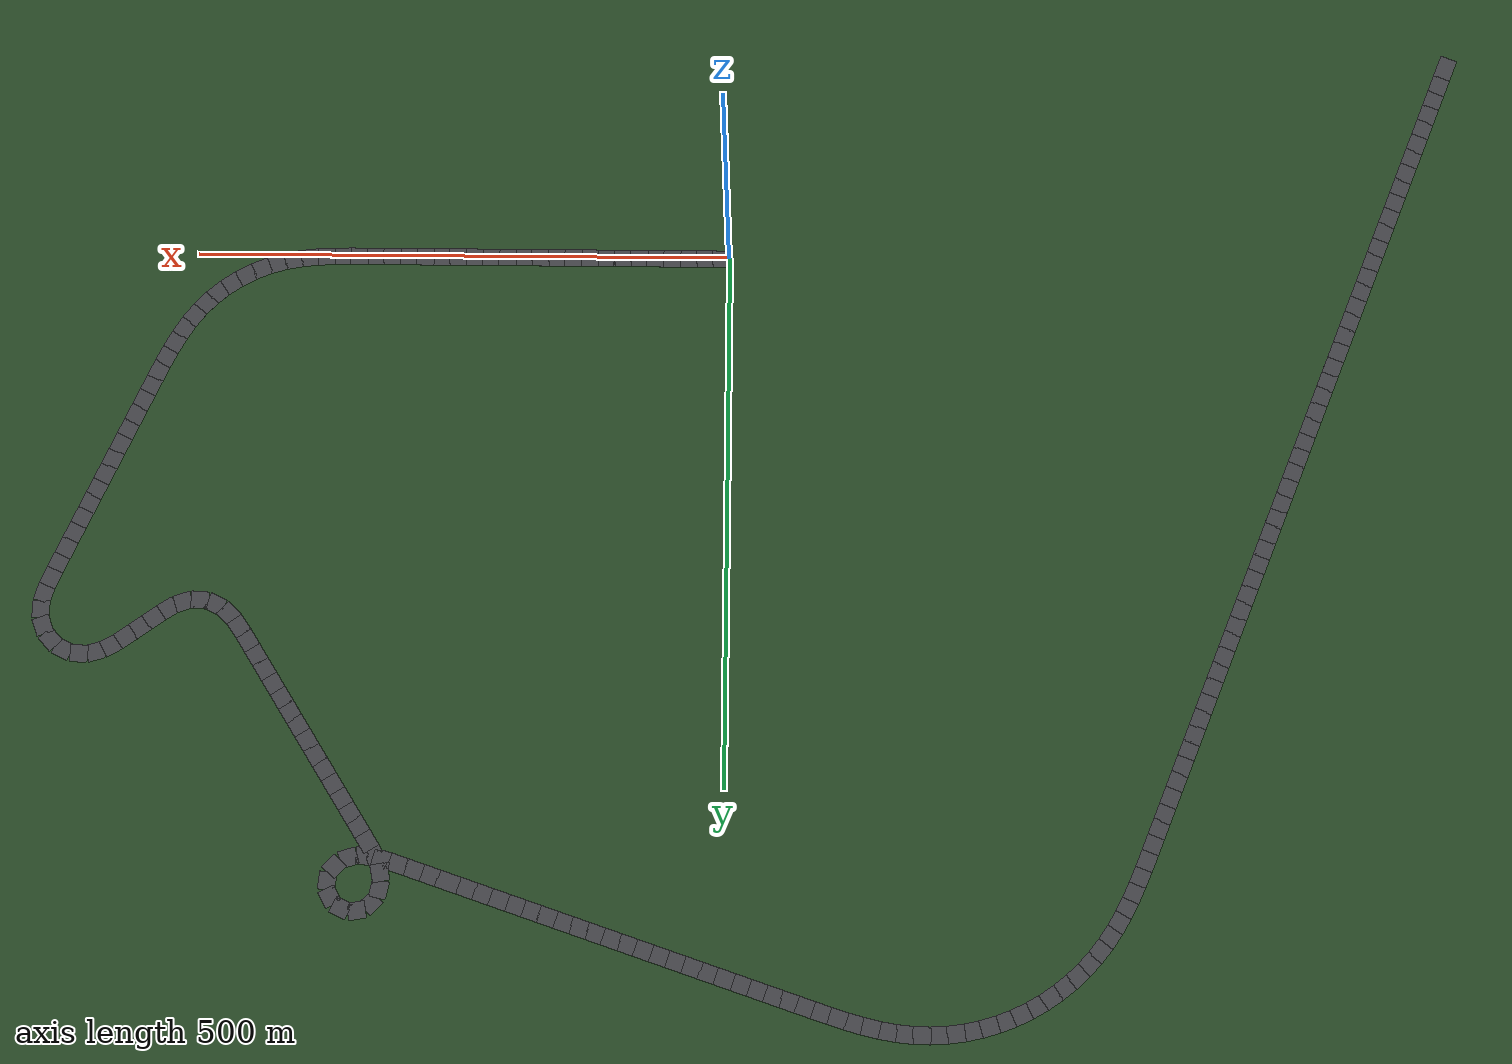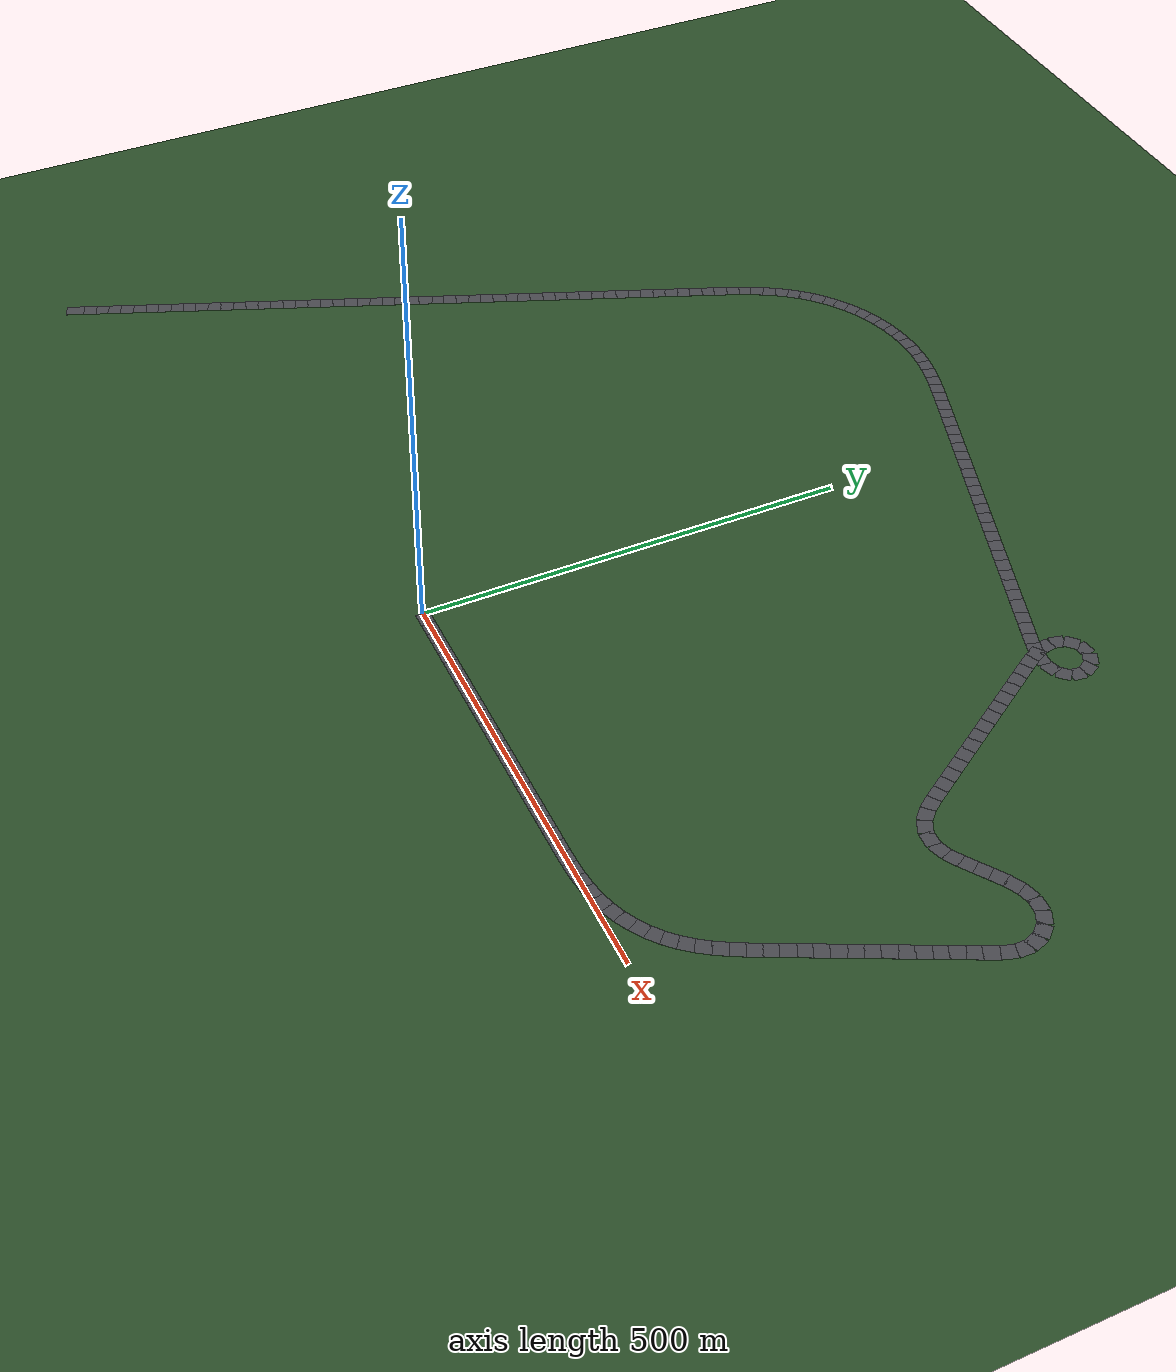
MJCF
<mujoco model="f1_lap">
  <option gravity="0 0 -9.81" timestep="0.005"/>
  <visual>
    <headlight diffuse=".9 .9 .9" ambient=".25 .25 .25" specular="0 0 0"/>
    <rgba haze="0.30 0.36 0.45 1"/>
    <global offwidth="1280" offheight="720"/>
  </visual>
  <asset>
    <texture type="skybox" builtin="gradient" rgb1="0.55 0.7 0.92" rgb2="0.15 0.20 0.35"
             width="800" height="800"/>
    <texture name="grass_tex" type="2d" builtin="checker"
             rgb1="0.20 0.35 0.18" rgb2="0.13 0.25 0.13"
             width="200" height="200"/>
    <material name="grass" texture="grass_tex" texrepeat="60 60"
              reflectance="0.0" specular="0.05"/>
    <material name="asphalt" rgba="0.28 0.28 0.30 1" specular="0.20" shininess="0.20"/>
    <material name="chassis" rgba="0.85 0.10 0.10 1" specular="0.7" shininess="0.7"/>
    <material name="halo"    rgba="0.05 0.05 0.05 1" specular="0.4" shininess="0.5"/>
    <material name="tyre"    rgba="0.05 0.05 0.05 1" specular="0.2" shininess="0.2"/>
    <material name="wing"    rgba="0.10 0.10 0.12 1" specular="0.4" shininess="0.5"/>
    <material name="line"    rgba="0.85 0.85 0.85 1"/>
  </asset>
  <worldbody>
    <light name="sun" diffuse="1.0 0.95 0.85" pos="500 -500 600" dir="-0.6 0.6 -0.8"
           castshadow="true"/>
    <light name="fill" diffuse="0.30 0.35 0.50" pos="-300 300 400" dir="0.5 -0.5 -0.6"
           castshadow="false"/>
    <!-- Big ground plane (grass) -->
    <geom name="ground" type="plane" pos="-25.0 259.3 0"
          size="991 991 1" material="grass"/>
    <!-- Centerline strip (asphalt road) -->
    <geom type="box" pos="7.76 0.00 0.02" size="8.26 8.0 0.02" quat="1.0000 0 0 0.0000" material="asphalt" contype="0" conaffinity="0"/>
      <geom type="box" pos="23.29 0.00 0.02" size="8.26 8.0 0.02" quat="1.0000 0 0 0.0000" material="asphalt" contype="0" conaffinity="0"/>
      <geom type="box" pos="38.81 0.00 0.02" size="8.26 8.0 0.02" quat="1.0000 0 0 0.0000" material="asphalt" contype="0" conaffinity="0"/>
      <geom type="box" pos="54.34 0.00 0.02" size="8.26 8.0 0.02" quat="1.0000 0 0 0.0000" material="asphalt" contype="0" conaffinity="0"/>
      <geom type="box" pos="69.87 0.00 0.02" size="8.26 8.0 0.02" quat="1.0000 0 0 0.0000" material="asphalt" contype="0" conaffinity="0"/>
      <geom type="box" pos="85.39 0.00 0.02" size="8.26 8.0 0.02" quat="1.0000 0 0 0.0000" material="asphalt" contype="0" conaffinity="0"/>
      <geom type="box" pos="100.92 0.00 0.02" size="8.26 8.0 0.02" quat="1.0000 0 0 0.0000" material="asphalt" contype="0" conaffinity="0"/>
      <geom type="box" pos="116.44 0.00 0.02" size="8.26 8.0 0.02" quat="1.0000 0 0 0.0000" material="asphalt" contype="0" conaffinity="0"/>
      <geom type="box" pos="131.97 0.00 0.02" size="8.26 8.0 0.02" quat="1.0000 0 0 0.0000" material="asphalt" contype="0" conaffinity="0"/>
      <geom type="box" pos="147.50 0.00 0.02" size="8.26 8.0 0.02" quat="1.0000 0 0 0.0000" material="asphalt" contype="0" conaffinity="0"/>
      <geom type="box" pos="163.02 0.00 0.02" size="8.26 8.0 0.02" quat="1.0000 0 0 0.0000" material="asphalt" contype="0" conaffinity="0"/>
      <geom type="box" pos="178.55 0.00 0.02" size="8.26 8.0 0.02" quat="1.0000 0 0 0.0000" material="asphalt" contype="0" conaffinity="0"/>
      <geom type="box" pos="194.07 0.00 0.02" size="8.26 8.0 0.02" quat="1.0000 0 0 0.0000" material="asphalt" contype="0" conaffinity="0"/>
      <geom type="box" pos="209.60 0.00 0.02" size="8.26 8.0 0.02" quat="1.0000 0 0 0.0000" material="asphalt" contype="0" conaffinity="0"/>
      <geom type="box" pos="225.13 0.00 0.02" size="8.26 8.0 0.02" quat="1.0000 0 0 0.0000" material="asphalt" contype="0" conaffinity="0"/>
      <geom type="box" pos="240.65 0.00 0.02" size="8.26 8.0 0.02" quat="1.0000 0 0 0.0000" material="asphalt" contype="0" conaffinity="0"/>
      <geom type="box" pos="256.18 0.00 0.02" size="8.26 8.0 0.02" quat="1.0000 0 0 0.0000" material="asphalt" contype="0" conaffinity="0"/>
      <geom type="box" pos="271.70 0.00 0.02" size="8.26 8.0 0.02" quat="1.0000 0 0 0.0000" material="asphalt" contype="0" conaffinity="0"/>
      <geom type="box" pos="287.23 0.00 0.02" size="8.26 8.0 0.02" quat="1.0000 0 0 0.0000" material="asphalt" contype="0" conaffinity="0"/>
      <geom type="box" pos="302.75 0.00 0.02" size="8.26 8.0 0.02" quat="1.0000 0 0 0.0000" material="asphalt" contype="0" conaffinity="0"/>
      <geom type="box" pos="318.28 0.00 0.02" size="8.26 8.0 0.02" quat="1.0000 0 0 0.0000" material="asphalt" contype="0" conaffinity="0"/>
      <geom type="box" pos="333.81 0.00 0.02" size="8.26 8.0 0.02" quat="1.0000 0 0 0.0000" material="asphalt" contype="0" conaffinity="0"/>
      <geom type="box" pos="349.33 0.01 0.02" size="8.26 8.0 0.02" quat="1.0000 0 0 0.0008" material="asphalt" contype="0" conaffinity="0"/>
      <geom type="box" pos="364.86 0.16 0.02" size="8.26 8.0 0.02" quat="1.0000 0 0 0.0087" material="asphalt" contype="0" conaffinity="0"/>
      <geom type="box" pos="380.37 0.71 0.02" size="8.26 8.0 0.02" quat="0.9996 0 0 0.0267" material="asphalt" contype="0" conaffinity="0"/>
      <geom type="box" pos="395.84 1.97 0.02" size="8.26 8.0 0.02" quat="0.9985 0 0 0.0547" material="asphalt" contype="0" conaffinity="0"/>
      <geom type="box" pos="411.18 4.25 0.02" size="8.26 8.0 0.02" quat="0.9957 0 0 0.0927" material="asphalt" contype="0" conaffinity="0"/>
      <geom type="box" pos="426.26 7.84 0.02" size="8.26 8.0 0.02" quat="0.9901 0 0 0.1401" material="asphalt" contype="0" conaffinity="0"/>
      <geom type="box" pos="440.91 12.90 0.02" size="8.26 8.0 0.02" quat="0.9816 0 0 0.1911" material="asphalt" contype="0" conaffinity="0"/>
      <geom type="box" pos="454.96 19.45 0.02" size="8.26 8.0 0.02" quat="0.9704 0 0 0.2416" material="asphalt" contype="0" conaffinity="0"/>
      <geom type="box" pos="468.25 27.42 0.02" size="8.26 8.0 0.02" quat="0.9566 0 0 0.2915" material="asphalt" contype="0" conaffinity="0"/>
      <geom type="box" pos="480.65 36.72 0.02" size="8.26 8.0 0.02" quat="0.9402 0 0 0.3406" material="asphalt" contype="0" conaffinity="0"/>
      <geom type="box" pos="492.03 47.25 0.02" size="8.26 8.0 0.02" quat="0.9213 0 0 0.3888" material="asphalt" contype="0" conaffinity="0"/>
      <geom type="box" pos="502.26 58.88 0.02" size="8.26 8.0 0.02" quat="0.9004 0 0 0.4351" material="asphalt" contype="0" conaffinity="0"/>
      <geom type="box" pos="511.36 71.44 0.02" size="8.26 8.0 0.02" quat="0.8807 0 0 0.4736" material="asphalt" contype="0" conaffinity="0"/>
      <geom type="box" pos="519.48 84.66 0.02" size="8.26 8.0 0.02" quat="0.8645 0 0 0.5027" material="asphalt" contype="0" conaffinity="0"/>
      <geom type="box" pos="526.84 98.32 0.02" size="8.26 8.0 0.02" quat="0.8526 0 0 0.5226" material="asphalt" contype="0" conaffinity="0"/>
      <geom type="box" pos="533.71 112.25 0.02" size="8.26 8.0 0.02" quat="0.8456 0 0 0.5338" material="asphalt" contype="0" conaffinity="0"/>
      <geom type="box" pos="540.33 126.29 0.02" size="8.26 8.0 0.02" quat="0.8437 0 0 0.5368" material="asphalt" contype="0" conaffinity="0"/>
      <geom type="box" pos="546.91 140.35 0.02" size="8.26 8.0 0.02" quat="0.8437 0 0 0.5368" material="asphalt" contype="0" conaffinity="0"/>
      <geom type="box" pos="553.49 154.42 0.02" size="8.26 8.0 0.02" quat="0.8437 0 0 0.5368" material="asphalt" contype="0" conaffinity="0"/>
      <geom type="box" pos="560.07 168.48 0.02" size="8.26 8.0 0.02" quat="0.8437 0 0 0.5368" material="asphalt" contype="0" conaffinity="0"/>
      <geom type="box" pos="566.65 182.54 0.02" size="8.26 8.0 0.02" quat="0.8437 0 0 0.5368" material="asphalt" contype="0" conaffinity="0"/>
      <geom type="box" pos="573.22 196.61 0.02" size="8.26 8.0 0.02" quat="0.8437 0 0 0.5368" material="asphalt" contype="0" conaffinity="0"/>
      <geom type="box" pos="579.80 210.67 0.02" size="8.26 8.0 0.02" quat="0.8437 0 0 0.5368" material="asphalt" contype="0" conaffinity="0"/>
      <geom type="box" pos="586.38 224.73 0.02" size="8.26 8.0 0.02" quat="0.8437 0 0 0.5368" material="asphalt" contype="0" conaffinity="0"/>
      <geom type="box" pos="592.96 238.80 0.02" size="8.26 8.0 0.02" quat="0.8437 0 0 0.5368" material="asphalt" contype="0" conaffinity="0"/>
      <geom type="box" pos="599.54 252.86 0.02" size="8.26 8.0 0.02" quat="0.8437 0 0 0.5368" material="asphalt" contype="0" conaffinity="0"/>
      <geom type="box" pos="606.11 266.92 0.02" size="8.26 8.0 0.02" quat="0.8437 0 0 0.5368" material="asphalt" contype="0" conaffinity="0"/>
      <geom type="box" pos="612.69 280.99 0.02" size="8.26 8.0 0.02" quat="0.8437 0 0 0.5368" material="asphalt" contype="0" conaffinity="0"/>
      <geom type="box" pos="619.27 295.05 0.02" size="8.26 8.0 0.02" quat="0.8437 0 0 0.5368" material="asphalt" contype="0" conaffinity="0"/>
      <geom type="box" pos="625.76 309.15 0.02" size="8.26 8.0 0.02" quat="0.8403 0 0 0.5421" material="asphalt" contype="0" conaffinity="0"/>
      <geom type="box" pos="631.27 323.62 0.02" size="8.25 8.0 0.02" quat="0.8058 0 0 0.5921" material="asphalt" contype="0" conaffinity="0"/>
      <geom type="box" pos="633.83 338.75 0.02" size="8.23 8.0 0.02" quat="0.7181 0 0 0.6960" material="asphalt" contype="0" conaffinity="0"/>
      <geom type="box" pos="631.45 353.73 0.02" size="8.22 8.0 0.02" quat="0.5748 0 0 0.8183" material="asphalt" contype="0" conaffinity="0"/>
      <geom type="box" pos="623.66 366.72 0.02" size="8.22 8.0 0.02" quat="0.4062 0 0 0.9138" material="asphalt" contype="0" conaffinity="0"/>
      <geom type="box" pos="611.53 375.80 0.02" size="8.22 8.0 0.02" quat="0.2223 0 0 0.9750" material="asphalt" contype="0" conaffinity="0"/>
      <geom type="box" pos="596.87 379.62 0.02" size="8.22 8.0 0.02" quat="0.0303 0 0 0.9995" material="asphalt" contype="0" conaffinity="0"/>
      <geom type="box" pos="581.73 377.95 0.02" size="8.24 8.0 0.02" quat="0.1392 0 0 -0.9903" material="asphalt" contype="0" conaffinity="0"/>
      <geom type="box" pos="567.49 372.08 0.02" size="8.26 8.0 0.02" quat="0.2488 0 0 -0.9685" material="asphalt" contype="0" conaffinity="0"/>
      <geom type="box" pos="554.32 363.92 0.02" size="8.26 8.0 0.02" quat="0.2984 0 0 -0.9544" material="asphalt" contype="0" conaffinity="0"/>
      <geom type="box" pos="541.61 355.00 0.02" size="8.26 8.0 0.02" quat="0.3041 0 0 -0.9526" material="asphalt" contype="0" conaffinity="0"/>
      <geom type="box" pos="528.95 346.00 0.02" size="8.26 8.0 0.02" quat="0.3041 0 0 -0.9526" material="asphalt" contype="0" conaffinity="0"/>
      <geom type="box" pos="516.05 337.39 0.02" size="8.26 8.0 0.02" quat="0.2762 0 0 -0.9611" material="asphalt" contype="0" conaffinity="0"/>
      <geom type="box" pos="502.14 330.86 0.02" size="8.23 8.0 0.02" quat="0.1574 0 0 -0.9875" material="asphalt" contype="0" conaffinity="0"/>
      <geom type="box" pos="487.08 328.93 0.02" size="8.22 8.0 0.02" quat="0.0305 0 0 0.9995" material="asphalt" contype="0" conaffinity="0"/>
      <geom type="box" pos="472.42 332.75 0.02" size="8.22 8.0 0.02" quat="0.2226 0 0 0.9749" material="asphalt" contype="0" conaffinity="0"/>
      <geom type="box" pos="459.96 341.55 0.02" size="8.24 8.0 0.02" quat="0.3799 0 0 0.9250" material="asphalt" contype="0" conaffinity="0"/>
      <geom type="box" pos="450.03 353.37 0.02" size="8.26 8.0 0.02" quat="0.4637 0 0 0.8860" material="asphalt" contype="0" conaffinity="0"/>
      <geom type="box" pos="441.48 366.31 0.02" size="8.26 8.0 0.02" quat="0.4836 0 0 0.8753" material="asphalt" contype="0" conaffinity="0"/>
      <geom type="box" pos="433.21 379.46 0.02" size="8.26 8.0 0.02" quat="0.4836 0 0 0.8753" material="asphalt" contype="0" conaffinity="0"/>
      <geom type="box" pos="424.95 392.60 0.02" size="8.26 8.0 0.02" quat="0.4836 0 0 0.8753" material="asphalt" contype="0" conaffinity="0"/>
      <geom type="box" pos="416.68 405.74 0.02" size="8.26 8.0 0.02" quat="0.4836 0 0 0.8753" material="asphalt" contype="0" conaffinity="0"/>
      <geom type="box" pos="408.42 418.89 0.02" size="8.26 8.0 0.02" quat="0.4836 0 0 0.8753" material="asphalt" contype="0" conaffinity="0"/>
      <geom type="box" pos="400.16 432.03 0.02" size="8.26 8.0 0.02" quat="0.4836 0 0 0.8753" material="asphalt" contype="0" conaffinity="0"/>
      <geom type="box" pos="391.89 445.18 0.02" size="8.26 8.0 0.02" quat="0.4836 0 0 0.8753" material="asphalt" contype="0" conaffinity="0"/>
      <geom type="box" pos="383.63 458.32 0.02" size="8.26 8.0 0.02" quat="0.4836 0 0 0.8753" material="asphalt" contype="0" conaffinity="0"/>
      <geom type="box" pos="375.36 471.46 0.02" size="8.26 8.0 0.02" quat="0.4836 0 0 0.8753" material="asphalt" contype="0" conaffinity="0"/>
      <geom type="box" pos="367.10 484.61 0.02" size="8.26 8.0 0.02" quat="0.4836 0 0 0.8753" material="asphalt" contype="0" conaffinity="0"/>
      <geom type="box" pos="358.84 497.75 0.02" size="8.26 8.0 0.02" quat="0.4836 0 0 0.8753" material="asphalt" contype="0" conaffinity="0"/>
      <geom type="box" pos="350.57 510.90 0.02" size="8.26 8.0 0.02" quat="0.4836 0 0 0.8753" material="asphalt" contype="0" conaffinity="0"/>
      <geom type="box" pos="342.31 524.04 0.02" size="8.26 8.0 0.02" quat="0.4836 0 0 0.8753" material="asphalt" contype="0" conaffinity="0"/>
      <geom type="box" pos="334.05 537.18 0.02" size="8.26 8.0 0.02" quat="0.4836 0 0 0.8753" material="asphalt" contype="0" conaffinity="0"/>
      <geom type="box" pos="325.81 550.35 0.02" size="8.26 8.0 0.02" quat="0.4857 0 0 0.8741" material="asphalt" contype="0" conaffinity="0"/>
      <geom type="box" pos="318.28 563.89 0.02" size="8.25 8.0 0.02" quat="0.5279 0 0 0.8493" material="asphalt" contype="0" conaffinity="0"/>
      <geom type="box" pos="313.30 578.42 0.02" size="8.23 8.0 0.02" quat="0.6326 0 0 0.7745" material="asphalt" contype="0" conaffinity="0"/>
      <geom type="box" pos="313.42 593.50 0.02" size="8.19 8.0 0.02" quat="0.7795 0 0 0.6264" material="asphalt" contype="0" conaffinity="0"/>
      <geom type="box" pos="320.49 606.42 0.02" size="8.15 8.0 0.02" quat="0.9240 0 0 0.3823" material="asphalt" contype="0" conaffinity="0"/>
      <geom type="box" pos="333.45 613.07 0.02" size="8.15 8.0 0.02" quat="0.9967 0 0 0.0817" material="asphalt" contype="0" conaffinity="0"/>
      <geom type="box" pos="347.87 610.94 0.02" size="8.15 8.0 0.02" quat="0.9740 0 0 -0.2268" material="asphalt" contype="0" conaffinity="0"/>
      <geom type="box" pos="358.35 600.82 0.02" size="8.15 8.0 0.02" quat="0.8581 0 0 -0.5135" material="asphalt" contype="0" conaffinity="0"/>
      <geom type="box" pos="360.99 586.48 0.02" size="8.15 8.0 0.02" quat="0.6602 0 0 -0.7511" material="asphalt" contype="0" conaffinity="0"/>
      <geom type="box" pos="354.81 573.27 0.02" size="8.16 8.0 0.02" quat="0.4011 0 0 -0.9160" material="asphalt" contype="0" conaffinity="0"/>
      <geom type="box" pos="342.25 565.36 0.02" size="8.21 8.0 0.02" quat="0.1494 0 0 -0.9888" material="asphalt" contype="0" conaffinity="0"/>
      <geom type="box" pos="327.17 563.60 0.02" size="8.24 8.0 0.02" quat="0.0332 0 0 0.9994" material="asphalt" contype="0" conaffinity="0"/>
      <geom type="box" pos="311.97 566.20 0.02" size="8.26 8.0 0.02" quat="0.1356 0 0 0.9908" material="asphalt" contype="0" conaffinity="0"/>
      <geom type="box" pos="297.15 570.77 0.02" size="8.26 8.0 0.02" quat="0.1622 0 0 0.9868" material="asphalt" contype="0" conaffinity="0"/>
      <geom type="box" pos="282.44 575.73 0.02" size="8.26 8.0 0.02" quat="0.1622 0 0 0.9868" material="asphalt" contype="0" conaffinity="0"/>
      <geom type="box" pos="267.73 580.70 0.02" size="8.26 8.0 0.02" quat="0.1622 0 0 0.9868" material="asphalt" contype="0" conaffinity="0"/>
      <geom type="box" pos="250.57 586.50 0.02" size="10.85 8.0 0.02" quat="0.1622 0 0 0.9868" material="asphalt" contype="0" conaffinity="0"/>
      <geom type="box" pos="233.41 592.30 0.02" size="8.26 8.0 0.02" quat="0.1622 0 0 0.9868" material="asphalt" contype="0" conaffinity="0"/>
      <geom type="box" pos="218.70 597.27 0.02" size="8.26 8.0 0.02" quat="0.1622 0 0 0.9868" material="asphalt" contype="0" conaffinity="0"/>
      <geom type="box" pos="203.99 602.24 0.02" size="8.26 8.0 0.02" quat="0.1622 0 0 0.9868" material="asphalt" contype="0" conaffinity="0"/>
      <geom type="box" pos="189.28 607.21 0.02" size="8.26 8.0 0.02" quat="0.1622 0 0 0.9868" material="asphalt" contype="0" conaffinity="0"/>
      <geom type="box" pos="174.57 612.18 0.02" size="8.26 8.0 0.02" quat="0.1622 0 0 0.9868" material="asphalt" contype="0" conaffinity="0"/>
      <geom type="box" pos="159.86 617.15 0.02" size="8.26 8.0 0.02" quat="0.1622 0 0 0.9868" material="asphalt" contype="0" conaffinity="0"/>
      <geom type="box" pos="145.15 622.11 0.02" size="8.26 8.0 0.02" quat="0.1622 0 0 0.9868" material="asphalt" contype="0" conaffinity="0"/>
      <geom type="box" pos="130.44 627.08 0.02" size="8.26 8.0 0.02" quat="0.1622 0 0 0.9868" material="asphalt" contype="0" conaffinity="0"/>
      <geom type="box" pos="115.73 632.05 0.02" size="8.26 8.0 0.02" quat="0.1622 0 0 0.9868" material="asphalt" contype="0" conaffinity="0"/>
      <geom type="box" pos="101.02 637.02 0.02" size="8.26 8.0 0.02" quat="0.1622 0 0 0.9868" material="asphalt" contype="0" conaffinity="0"/>
      <geom type="box" pos="86.32 641.99 0.02" size="8.26 8.0 0.02" quat="0.1622 0 0 0.9868" material="asphalt" contype="0" conaffinity="0"/>
      <geom type="box" pos="71.61 646.96 0.02" size="8.26 8.0 0.02" quat="0.1622 0 0 0.9868" material="asphalt" contype="0" conaffinity="0"/>
      <geom type="box" pos="56.90 651.93 0.02" size="8.26 8.0 0.02" quat="0.1622 0 0 0.9868" material="asphalt" contype="0" conaffinity="0"/>
      <geom type="box" pos="42.19 656.90 0.02" size="8.26 8.0 0.02" quat="0.1622 0 0 0.9868" material="asphalt" contype="0" conaffinity="0"/>
      <geom type="box" pos="27.48 661.87 0.02" size="8.26 8.0 0.02" quat="0.1622 0 0 0.9868" material="asphalt" contype="0" conaffinity="0"/>
      <geom type="box" pos="12.77 666.84 0.02" size="8.26 8.0 0.02" quat="0.1622 0 0 0.9868" material="asphalt" contype="0" conaffinity="0"/>
      <geom type="box" pos="-1.94 671.81 0.02" size="8.26 8.0 0.02" quat="0.1622 0 0 0.9868" material="asphalt" contype="0" conaffinity="0"/>
      <geom type="box" pos="-16.65 676.78 0.02" size="8.26 8.0 0.02" quat="0.1622 0 0 0.9868" material="asphalt" contype="0" conaffinity="0"/>
      <geom type="box" pos="-31.36 681.75 0.02" size="8.26 8.0 0.02" quat="0.1622 0 0 0.9868" material="asphalt" contype="0" conaffinity="0"/>
      <geom type="box" pos="-46.07 686.71 0.02" size="8.26 8.0 0.02" quat="0.1622 0 0 0.9868" material="asphalt" contype="0" conaffinity="0"/>
      <geom type="box" pos="-60.78 691.68 0.02" size="8.26 8.0 0.02" quat="0.1622 0 0 0.9868" material="asphalt" contype="0" conaffinity="0"/>
      <geom type="box" pos="-75.49 696.65 0.02" size="8.26 8.0 0.02" quat="0.1622 0 0 0.9868" material="asphalt" contype="0" conaffinity="0"/>
      <geom type="box" pos="-90.21 701.59 0.02" size="8.26 8.0 0.02" quat="0.1599 0 0 0.9871" material="asphalt" contype="0" conaffinity="0"/>
      <geom type="box" pos="-104.98 706.36 0.02" size="8.26 8.0 0.02" quat="0.1514 0 0 0.9885" material="asphalt" contype="0" conaffinity="0"/>
      <geom type="box" pos="-119.86 710.78 0.02" size="8.26 8.0 0.02" quat="0.1362 0 0 0.9907" material="asphalt" contype="0" conaffinity="0"/>
      <geom type="box" pos="-134.89 714.64 0.02" size="8.26 8.0 0.02" quat="0.1144 0 0 0.9934" material="asphalt" contype="0" conaffinity="0"/>
      <geom type="box" pos="-150.10 717.73 0.02" size="8.26 8.0 0.02" quat="0.0858 0 0 0.9963" material="asphalt" contype="0" conaffinity="0"/>
      <geom type="box" pos="-165.47 719.84 0.02" size="8.26 8.0 0.02" quat="0.0505 0 0 0.9987" material="asphalt" contype="0" conaffinity="0"/>
      <geom type="box" pos="-180.95 720.81 0.02" size="8.26 8.0 0.02" quat="0.0119 0 0 0.9999" material="asphalt" contype="0" conaffinity="0"/>
      <geom type="box" pos="-196.46 720.57 0.02" size="8.26 8.0 0.02" quat="0.0269 0 0 -0.9996" material="asphalt" contype="0" conaffinity="0"/>
      <geom type="box" pos="-211.90 719.14 0.02" size="8.26 8.0 0.02" quat="0.0657 0 0 -0.9978" material="asphalt" contype="0" conaffinity="0"/>
      <geom type="box" pos="-227.19 716.51 0.02" size="8.26 8.0 0.02" quat="0.1044 0 0 -0.9945" material="asphalt" contype="0" conaffinity="0"/>
      <geom type="box" pos="-242.23 712.70 0.02" size="8.26 8.0 0.02" quat="0.1429 0 0 -0.9897" material="asphalt" contype="0" conaffinity="0"/>
      <geom type="box" pos="-256.92 707.74 0.02" size="8.26 8.0 0.02" quat="0.1812 0 0 -0.9834" material="asphalt" contype="0" conaffinity="0"/>
      <geom type="box" pos="-271.19 701.66 0.02" size="8.26 8.0 0.02" quat="0.2192 0 0 -0.9757" material="asphalt" contype="0" conaffinity="0"/>
      <geom type="box" pos="-284.94 694.48 0.02" size="8.26 8.0 0.02" quat="0.2569 0 0 -0.9664" material="asphalt" contype="0" conaffinity="0"/>
      <geom type="box" pos="-298.10 686.26 0.02" size="8.26 8.0 0.02" quat="0.2942 0 0 -0.9557" material="asphalt" contype="0" conaffinity="0"/>
      <geom type="box" pos="-310.57 677.05 0.02" size="8.26 8.0 0.02" quat="0.3311 0 0 -0.9436" material="asphalt" contype="0" conaffinity="0"/>
      <geom type="box" pos="-322.30 666.90 0.02" size="8.26 8.0 0.02" quat="0.3674 0 0 -0.9300" material="asphalt" contype="0" conaffinity="0"/>
      <geom type="box" pos="-333.20 655.86 0.02" size="8.26 8.0 0.02" quat="0.4033 0 0 -0.9151" material="asphalt" contype="0" conaffinity="0"/>
      <geom type="box" pos="-343.21 644.02 0.02" size="8.26 8.0 0.02" quat="0.4385 0 0 -0.8987" material="asphalt" contype="0" conaffinity="0"/>
      <geom type="box" pos="-352.29 631.44 0.02" size="8.26 8.0 0.02" quat="0.4723 0 0 -0.8814" material="asphalt" contype="0" conaffinity="0"/>
      <geom type="box" pos="-360.45 618.25 0.02" size="8.26 8.0 0.02" quat="0.5011 0 0 -0.8654" material="asphalt" contype="0" conaffinity="0"/>
      <geom type="box" pos="-367.81 604.58 0.02" size="8.26 8.0 0.02" quat="0.5242 0 0 -0.8516" material="asphalt" contype="0" conaffinity="0"/>
      <geom type="box" pos="-374.51 590.58 0.02" size="8.26 8.0 0.02" quat="0.5419 0 0 -0.8404" material="asphalt" contype="0" conaffinity="0"/>
      <geom type="box" pos="-380.71 576.35 0.02" size="8.26 8.0 0.02" quat="0.5544 0 0 -0.8322" material="asphalt" contype="0" conaffinity="0"/>
      <geom type="box" pos="-386.56 561.97 0.02" size="8.26 8.0 0.02" quat="0.5618 0 0 -0.8273" material="asphalt" contype="0" conaffinity="0"/>
      <geom type="box" pos="-392.24 547.52 0.02" size="8.26 8.0 0.02" quat="0.5642 0 0 -0.8256" material="asphalt" contype="0" conaffinity="0"/>
      <geom type="box" pos="-397.88 533.05 0.02" size="8.26 8.0 0.02" quat="0.5643 0 0 -0.8256" material="asphalt" contype="0" conaffinity="0"/>
      <geom type="box" pos="-403.52 518.59 0.02" size="8.26 8.0 0.02" quat="0.5643 0 0 -0.8256" material="asphalt" contype="0" conaffinity="0"/>
      <geom type="box" pos="-409.16 504.12 0.02" size="8.26 8.0 0.02" quat="0.5643 0 0 -0.8256" material="asphalt" contype="0" conaffinity="0"/>
      <geom type="box" pos="-414.79 489.66 0.02" size="8.26 8.0 0.02" quat="0.5643 0 0 -0.8256" material="asphalt" contype="0" conaffinity="0"/>
      <geom type="box" pos="-420.43 475.19 0.02" size="8.26 8.0 0.02" quat="0.5643 0 0 -0.8256" material="asphalt" contype="0" conaffinity="0"/>
      <geom type="box" pos="-426.07 460.72 0.02" size="8.26 8.0 0.02" quat="0.5643 0 0 -0.8256" material="asphalt" contype="0" conaffinity="0"/>
      <geom type="box" pos="-431.71 446.26 0.02" size="8.26 8.0 0.02" quat="0.5643 0 0 -0.8256" material="asphalt" contype="0" conaffinity="0"/>
      <geom type="box" pos="-437.34 431.79 0.02" size="8.26 8.0 0.02" quat="0.5643 0 0 -0.8256" material="asphalt" contype="0" conaffinity="0"/>
      <geom type="box" pos="-442.98 417.32 0.02" size="8.26 8.0 0.02" quat="0.5643 0 0 -0.8256" material="asphalt" contype="0" conaffinity="0"/>
      <geom type="box" pos="-448.62 402.86 0.02" size="8.26 8.0 0.02" quat="0.5643 0 0 -0.8256" material="asphalt" contype="0" conaffinity="0"/>
      <geom type="box" pos="-454.25 388.39 0.02" size="8.26 8.0 0.02" quat="0.5643 0 0 -0.8256" material="asphalt" contype="0" conaffinity="0"/>
      <geom type="box" pos="-459.89 373.93 0.02" size="8.26 8.0 0.02" quat="0.5643 0 0 -0.8256" material="asphalt" contype="0" conaffinity="0"/>
      <geom type="box" pos="-465.53 359.46 0.02" size="8.26 8.0 0.02" quat="0.5643 0 0 -0.8256" material="asphalt" contype="0" conaffinity="0"/>
      <geom type="box" pos="-471.17 344.99 0.02" size="8.26 8.0 0.02" quat="0.5643 0 0 -0.8256" material="asphalt" contype="0" conaffinity="0"/>
      <geom type="box" pos="-476.80 330.53 0.02" size="8.26 8.0 0.02" quat="0.5643 0 0 -0.8256" material="asphalt" contype="0" conaffinity="0"/>
      <geom type="box" pos="-482.44 316.06 0.02" size="8.26 8.0 0.02" quat="0.5643 0 0 -0.8256" material="asphalt" contype="0" conaffinity="0"/>
      <geom type="box" pos="-488.08 301.59 0.02" size="8.26 8.0 0.02" quat="0.5643 0 0 -0.8256" material="asphalt" contype="0" conaffinity="0"/>
      <geom type="box" pos="-493.72 287.13 0.02" size="8.26 8.0 0.02" quat="0.5643 0 0 -0.8256" material="asphalt" contype="0" conaffinity="0"/>
      <geom type="box" pos="-499.35 272.66 0.02" size="8.26 8.0 0.02" quat="0.5643 0 0 -0.8256" material="asphalt" contype="0" conaffinity="0"/>
      <geom type="box" pos="-504.99 258.20 0.02" size="8.26 8.0 0.02" quat="0.5643 0 0 -0.8256" material="asphalt" contype="0" conaffinity="0"/>
      <geom type="box" pos="-510.63 243.73 0.02" size="8.26 8.0 0.02" quat="0.5643 0 0 -0.8256" material="asphalt" contype="0" conaffinity="0"/>
      <geom type="box" pos="-516.27 229.26 0.02" size="8.26 8.0 0.02" quat="0.5643 0 0 -0.8256" material="asphalt" contype="0" conaffinity="0"/>
      <geom type="box" pos="-521.90 214.80 0.02" size="8.26 8.0 0.02" quat="0.5643 0 0 -0.8256" material="asphalt" contype="0" conaffinity="0"/>
      <geom type="box" pos="-527.54 200.33 0.02" size="8.26 8.0 0.02" quat="0.5643 0 0 -0.8256" material="asphalt" contype="0" conaffinity="0"/>
      <geom type="box" pos="-533.18 185.86 0.02" size="8.26 8.0 0.02" quat="0.5643 0 0 -0.8256" material="asphalt" contype="0" conaffinity="0"/>
      <geom type="box" pos="-538.82 171.40 0.02" size="8.26 8.0 0.02" quat="0.5643 0 0 -0.8256" material="asphalt" contype="0" conaffinity="0"/>
      <geom type="box" pos="-544.45 156.93 0.02" size="8.26 8.0 0.02" quat="0.5643 0 0 -0.8256" material="asphalt" contype="0" conaffinity="0"/>
      <geom type="box" pos="-550.09 142.47 0.02" size="8.26 8.0 0.02" quat="0.5643 0 0 -0.8256" material="asphalt" contype="0" conaffinity="0"/>
      <geom type="box" pos="-555.73 128.00 0.02" size="8.26 8.0 0.02" quat="0.5643 0 0 -0.8256" material="asphalt" contype="0" conaffinity="0"/>
      <geom type="box" pos="-561.37 113.53 0.02" size="8.26 8.0 0.02" quat="0.5643 0 0 -0.8256" material="asphalt" contype="0" conaffinity="0"/>
      <geom type="box" pos="-567.00 99.07 0.02" size="8.26 8.0 0.02" quat="0.5643 0 0 -0.8256" material="asphalt" contype="0" conaffinity="0"/>
      <geom type="box" pos="-572.64 84.60 0.02" size="8.26 8.0 0.02" quat="0.5643 0 0 -0.8256" material="asphalt" contype="0" conaffinity="0"/>
      <geom type="box" pos="-578.28 70.13 0.02" size="8.26 8.0 0.02" quat="0.5643 0 0 -0.8256" material="asphalt" contype="0" conaffinity="0"/>
      <geom type="box" pos="-583.91 55.67 0.02" size="8.26 8.0 0.02" quat="0.5643 0 0 -0.8256" material="asphalt" contype="0" conaffinity="0"/>
      <geom type="box" pos="-589.55 41.20 0.02" size="8.26 8.0 0.02" quat="0.5643 0 0 -0.8256" material="asphalt" contype="0" conaffinity="0"/>
      <geom type="box" pos="-595.19 26.74 0.02" size="8.26 8.0 0.02" quat="0.5643 0 0 -0.8256" material="asphalt" contype="0" conaffinity="0"/>
      <geom type="box" pos="-600.83 12.27 0.02" size="8.26 8.0 0.02" quat="0.5643 0 0 -0.8256" material="asphalt" contype="0" conaffinity="0"/>
      <geom type="box" pos="-606.46 -2.20 0.02" size="8.26 8.0 0.02" quat="0.5643 0 0 -0.8256" material="asphalt" contype="0" conaffinity="0"/>
      <geom type="box" pos="-612.10 -16.66 0.02" size="8.26 8.0 0.02" quat="0.5643 0 0 -0.8256" material="asphalt" contype="0" conaffinity="0"/>
      <geom type="box" pos="-617.74 -31.13 0.02" size="8.26 8.0 0.02" quat="0.5643 0 0 -0.8256" material="asphalt" contype="0" conaffinity="0"/>
      <geom type="box" pos="-623.38 -45.60 0.02" size="8.26 8.0 0.02" quat="0.5643 0 0 -0.8256" material="asphalt" contype="0" conaffinity="0"/>
      <geom type="box" pos="-629.01 -60.06 0.02" size="8.26 8.0 0.02" quat="0.5643 0 0 -0.8256" material="asphalt" contype="0" conaffinity="0"/>
      <geom type="box" pos="-634.65 -74.53 0.02" size="8.26 8.0 0.02" quat="0.5643 0 0 -0.8256" material="asphalt" contype="0" conaffinity="0"/>
      <geom type="box" pos="-640.29 -88.99 0.02" size="8.26 8.0 0.02" quat="0.5643 0 0 -0.8256" material="asphalt" contype="0" conaffinity="0"/>
      <geom type="box" pos="-645.93 -103.46 0.02" size="8.26 8.0 0.02" quat="0.5643 0 0 -0.8256" material="asphalt" contype="0" conaffinity="0"/>
      <geom type="box" pos="-651.56 -117.93 0.02" size="8.26 8.0 0.02" quat="0.5643 0 0 -0.8256" material="asphalt" contype="0" conaffinity="0"/>
      <geom type="box" pos="-657.20 -132.39 0.02" size="8.26 8.0 0.02" quat="0.5643 0 0 -0.8256" material="asphalt" contype="0" conaffinity="0"/>
      <geom type="box" pos="-662.84 -146.86 0.02" size="8.26 8.0 0.02" quat="0.5643 0 0 -0.8256" material="asphalt" contype="0" conaffinity="0"/>
      <geom type="box" pos="-668.48 -161.33 0.02" size="8.26 8.0 0.02" quat="0.5643 0 0 -0.8256" material="asphalt" contype="0" conaffinity="0"/>
      <geom type="box" pos="-674.11 -175.79 0.02" size="8.26 8.0 0.02" quat="0.5643 0 0 -0.8256" material="asphalt" contype="0" conaffinity="0"/>
      <geom type="box" pos="-680.69 -192.67 0.02" size="10.85 8.0 0.02" quat="0.5643 0 0 -0.8256" material="asphalt" contype="0" conaffinity="0"/>

    <!-- The car as a free body. Chassis box + 4 wheels + a token rear wing. -->
    <body name="car" pos="0 0 0.36000000000000004">
      <joint name="free" type="free"/>
      <inertial pos="0 0 0" mass="830" diaginertia="200 1350 1500"/>
      <!-- Chassis box: -->
      <geom name="chassis" type="box"
            size="2.750 0.900 0.300"
            pos="0 0 0.35"
            material="chassis"/>
      <!-- Halo arch -->
      <geom name="halo_main" type="capsule"
            fromto="0 -0.8 0.7
                    0 0.8 0.7"
            size="0.05" material="halo"/>
      <!-- Rear wing -->
      <geom name="rear_wing" type="box"
            size="0.1 1.200 0.04"
            pos="-2.550 0 1.05"
            material="wing"/>
      <geom name="rear_wing_endL" type="box" size="0.1 0.04 0.30"
            pos="-2.550 1.200 0.8"
            material="wing"/>
      <geom name="rear_wing_endR" type="box" size="0.1 0.04 0.30"
            pos="-2.550 -1.200 0.8"
            material="wing"/>
      <!-- Front wing -->
      <geom name="front_wing" type="box"
            size="0.08 1.200 0.04"
            pos="2.700 0 0.10"
            material="wing"/>
      <!-- 4 wheels at the corners -->
      <geom name="wheel_FL" type="cylinder" size="0.340 0.180"
            pos="1.625  0.800 0.340"
            quat="0.7071 0.7071 0 0" material="tyre"/>
      <geom name="wheel_FR" type="cylinder" size="0.340 0.180"
            pos="1.625 -0.800 0.340"
            quat="0.7071 0.7071 0 0" material="tyre"/>
      <geom name="wheel_RL" type="cylinder" size="0.340 0.180"
            pos="-1.625  0.800 0.340"
            quat="0.7071 0.7071 0 0" material="tyre"/>
      <geom name="wheel_RR" type="cylinder" size="0.340 0.180"
            pos="-1.625 -0.800 0.340"
            quat="0.7071 0.7071 0 0" material="tyre"/>
    </body>
  </worldbody>
</mujoco>
